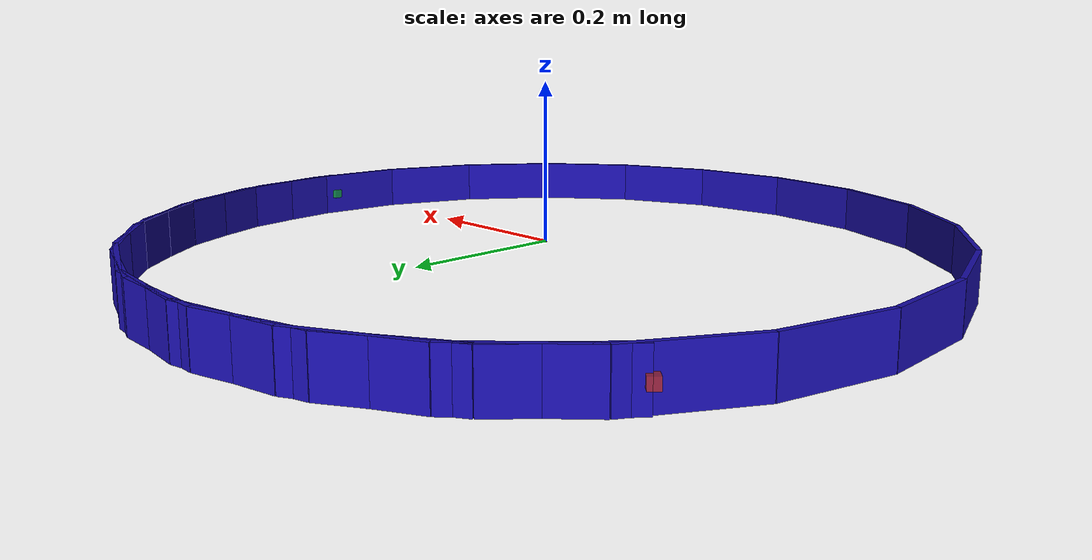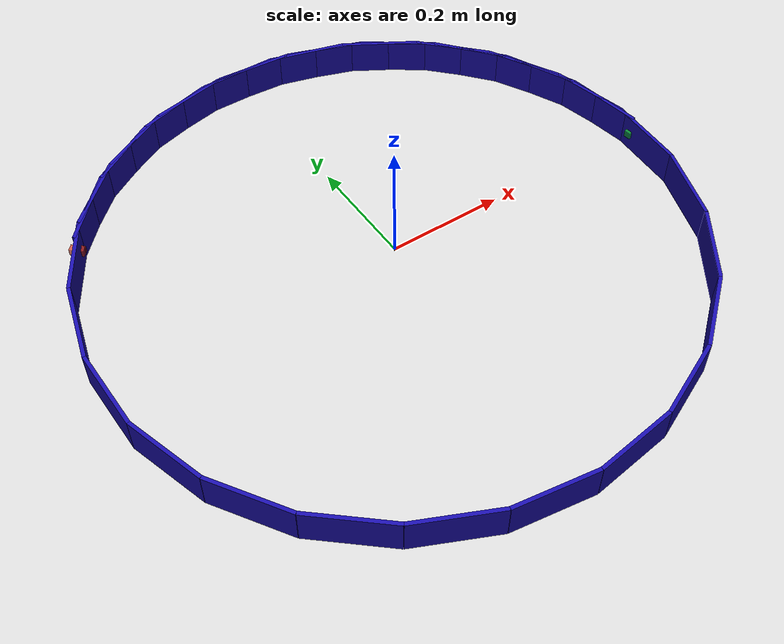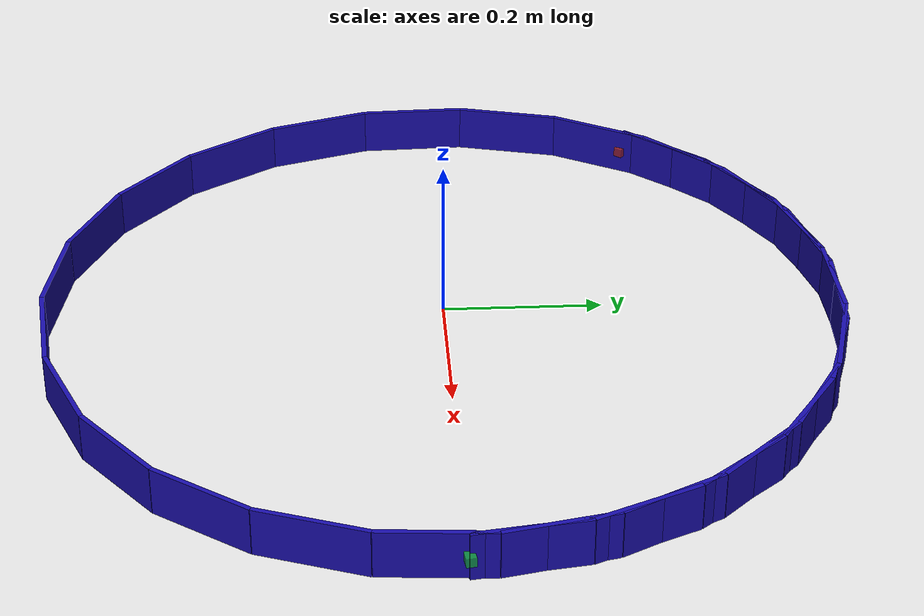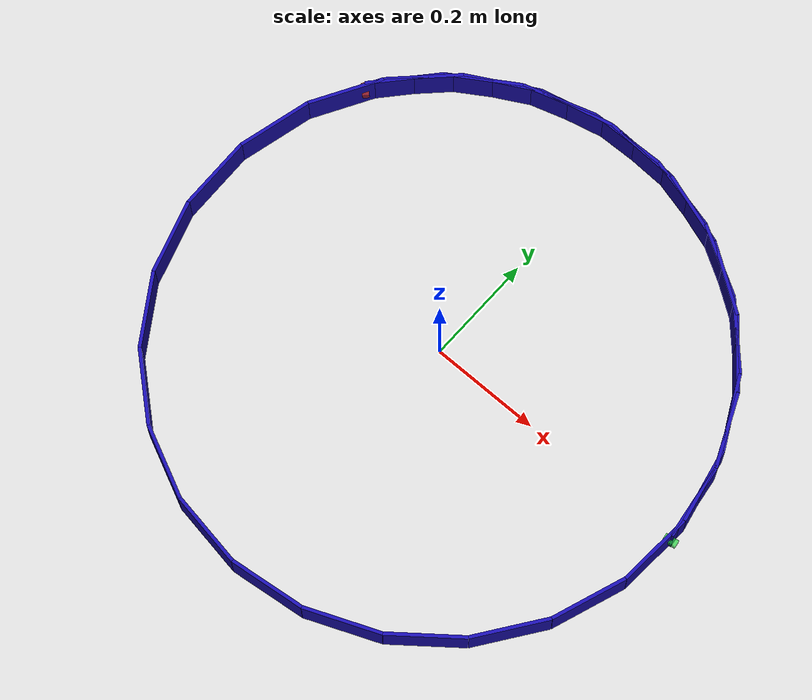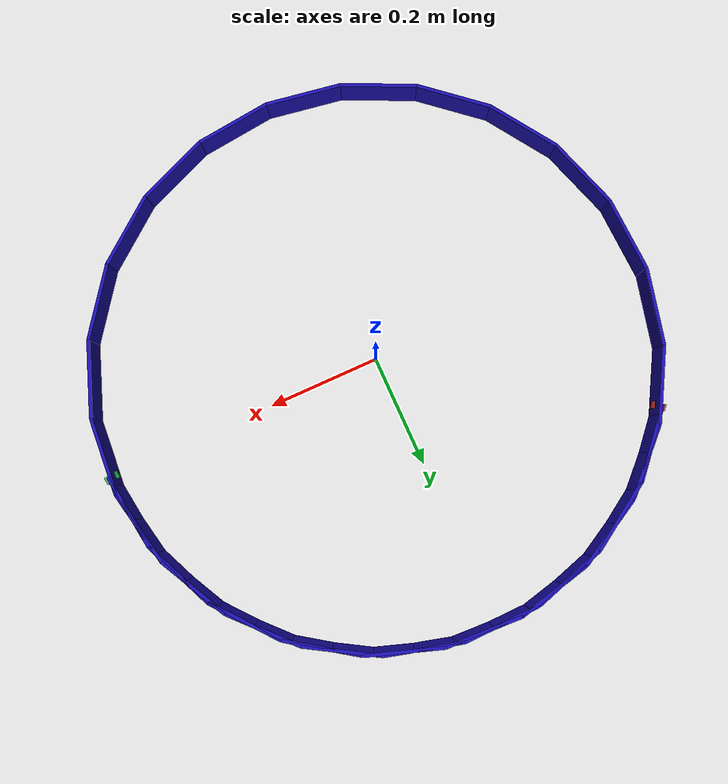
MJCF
<mujoco model="base">
  <compiler angle="radian"/>

  <option timestep="0.0005" tolerance="1e-10" integrator="RK4" cone="elliptic" jacobian="sparse" iterations="30"/>

  <size njmax="5000" nconmax="5000"/>

  <visual>
    <quality shadowsize="2048"/>
    <map stiffness="700" fogstart="10" fogend="15" znear="0.001" zfar="40" shadowscale="0.5"/>
    <rgba haze="0.15 0.25 0.35 1"/>
  </visual>

  <statistic meansize="0.05" extent="2"/>

  <extension>
    <plugin plugin="mujoco.elasticity.cable">
      <instance name="composite">
        <config key="twist" value="7859.503362562732"/>
        <config key="bend" value="1571900.6725125466"/>
        <config key="flat" value="false"/>
      </instance>
    </plugin>
  </extension>

  <asset>
    <texture type="skybox" builtin="gradient" rgb1="1 1 0.9" rgb2="0.9 0.9 0.81" width="512" height="3072"/>
    <texture type="2d" name="texplane" builtin="checker" mark="cross" rgb1="0.2 0.3 0.4" rgb2="0.1 0.15 0.2" markrgb="0.8 0.8 0.8" width="512" height="512"/>
    <material name="matplane" texture="texplane" texuniform="true" reflectance="0.3"/>
  </asset>

  <worldbody>
    <geom name="floor" size="3 3 0.125" pos="0 0 -10" type="plane" condim="1" material="matplane"/>
    <geom name="axis_x" size="0.002 0.015" pos="0.015 0 0" quat="0.707107 0 -0.707107 0" type="capsule" rgba="1 0 0 1"/>
    <geom name="axis_y" size="0.002 0.015" pos="0 0.015 0" quat="0.707107 0.707107 0 0" type="capsule" rgba="0 1 0 1"/>
    <geom name="axis_z" size="0.002 0.015" pos="0 0 0.015" quat="0 1 0 0" type="capsule" rgba="0 0 1 1"/>
    <body name="eef_body2" pos="0.5 0 0" quat="0.464327 0.464327 0.533292 0.533292">
      <geom name="eef_geom2" size="0.006 0.006 0.012" type="box" contype="0" conaffinity="0" mass="10" rgba="0.1 0.8 0.2 0.7"/>
      <site name="eef_body2_site" pos="0 0 0" size="0.01" group="2" rgba="0 0 0 0"/>
      <body name="eef_body2_sensor">
        <site name="sensor_site2" pos="0 0 0" size="0.01" group="2" rgba="0 0 0 0"/>
      </body>
    </body>
    <body name="eef_body" pos="-0.415404 0.27828 0" quat="0.289143 0.289143 -0.645288 -0.645288">
      <geom name="eef_geom" size="0.006 0.006 0.012" type="box" contype="0" conaffinity="0" mass="10" rgba="0.8 0.2 0.1 0.7"/>
      <site name="eef_body_site" pos="0 0 0" size="0.01" group="1" rgba="0 0 0 0"/>
      <body name="eef_body_sensor">
        <site name="sensor_site1" pos="0 0 0" size="0.01" group="1" rgba="0 0 0 0"/>
      </body>
    </body>
    <body name="stiffrope" pos="0.5 0 0">
      <joint name="freejoint_A" type="free" limited="false" actuatorfrclimited="false"/>
      <body name="B_0" quat="0.464327 0.464327 0.533292 0.533292">
        <geom name="G0" size="0.003 0.03 0.0688009" pos="0.0688009 0 0" quat="0.707107 0 -0.707107 0" type="box" conaffinity="0" condim="1" solref="0.001" mass="0.0037738" rgba="0.1 0.0533333 0.673333 1"/>
        <plugin instance="composite"/>
        <body name="B_1" pos="0.137602 0 0" quat="0.990488 0 0.137602 0">
          <joint name="J_1" pos="0 0 0" type="ball" group="3" actuatorfrclimited="false" damping="0.1"/>
          <geom name="G1" size="0.003 0.03 0.0688009" pos="0.0688009 0 0" quat="0.707107 0 -0.707107 0" type="box" conaffinity="0" condim="1" solref="0.001" mass="0.0037738" rgba="0.1 0.0533333 0.673333 1"/>
          <plugin instance="composite"/>
          <body name="B_2" pos="0.137602 0 0" quat="0.990488 0 0.137602 0">
            <joint name="J_2" pos="0 0 0" type="ball" group="3" actuatorfrclimited="false" damping="0.1"/>
            <geom name="G2" size="0.003 0.03 0.0688009" pos="0.0688009 0 0" quat="0.707107 0 -0.707107 0" type="box" conaffinity="0" condim="1" solref="0.001" mass="0.0037738" rgba="0.1 0.0533333 0.673333 1"/>
            <plugin instance="composite"/>
            <body name="B_3" pos="0.137602 0 0" quat="0.990488 0 0.137602 0">
              <joint name="J_3" pos="0 0 0" type="ball" group="3" actuatorfrclimited="false" damping="0.1"/>
              <geom name="G3" size="0.003 0.03 0.0688009" pos="0.0688009 0 0" quat="0.707107 0 -0.707107 0" type="box" conaffinity="0" condim="1" solref="0.001" mass="0.0037738" rgba="0.1 0.0533333 0.673333 1"/>
              <plugin instance="composite"/>
              <body name="B_4" pos="0.137602 0 0" quat="0.990488 0 0.137602 0">
                <joint name="J_4" pos="0 0 0" type="ball" group="3" actuatorfrclimited="false" damping="0.1"/>
                <geom name="G4" size="0.003 0.03 0.0688009" pos="0.0688009 0 0" quat="0.707107 0 -0.707107 0" type="box" conaffinity="0" condim="1" solref="0.001" mass="0.0037738" rgba="0.1 0.0533333 0.673333 1"/>
                <plugin instance="composite"/>
                <body name="B_5" pos="0.137602 0 0" quat="0.990488 0 0.137602 0">
                  <joint name="J_5" pos="0 0 0" type="ball" group="3" actuatorfrclimited="false" damping="0.1"/>
                  <geom name="G5" size="0.003 0.03 0.0688009" pos="0.0688009 0 0" quat="0.707107 0 -0.707107 0" type="box" conaffinity="0" condim="1" solref="0.001" mass="0.0037738" rgba="0.1 0.0533333 0.673333 1"/>
                  <plugin instance="composite"/>
                  <body name="B_6" pos="0.137602 0 0" quat="0.990488 0 0.137602 0">
                    <joint name="J_6" pos="0 0 0" type="ball" group="3" actuatorfrclimited="false" damping="0.1"/>
                    <geom name="G6" size="0.003 0.03 0.0688009" pos="0.0688009 0 0" quat="0.707107 0 -0.707107 0" type="box" conaffinity="0" condim="1" solref="0.001" mass="0.0037738" rgba="0.1 0.0533333 0.673333 1"/>
                    <plugin instance="composite"/>
                    <body name="B_7" pos="0.137602 0 0" quat="0.990488 0 0.137602 0">
                      <joint name="J_7" pos="0 0 0" type="ball" group="3" actuatorfrclimited="false" damping="0.1"/>
                      <geom name="G7" size="0.003 0.03 0.0688009" pos="0.0688009 0 0" quat="0.707107 0 -0.707107 0" type="box" conaffinity="0" condim="1" solref="0.001" mass="0.0037738" rgba="0.1 0.0533333 0.673333 1"/>
                      <plugin instance="composite"/>
                      <body name="B_8" pos="0.137602 0 0" quat="0.990488 0 0.137602 0">
                        <joint name="J_8" pos="0 0 0" type="ball" group="3" actuatorfrclimited="false" damping="0.1"/>
                        <geom name="G8" size="0.003 0.03 0.0688009" pos="0.0688009 0 0" quat="0.707107 0 -0.707107 0" type="box" conaffinity="0" condim="1" solref="0.001" mass="0.0037738" rgba="0.1 0.0533333 0.673333 1"/>
                        <plugin instance="composite"/>
                        <body name="B_9" pos="0.137602 0 0" quat="0.990488 0 0.137602 0">
                          <joint name="J_9" pos="0 0 0" type="ball" group="3" actuatorfrclimited="false" damping="0.1"/>
                          <geom name="G9" size="0.003 0.03 0.0688009" pos="0.0688009 0 0" quat="0.707107 0 -0.707107 0" type="box" conaffinity="0" condim="1" solref="0.001" mass="0.0037738" rgba="0.1 0.0533333 0.673333 1"/>
                          <plugin instance="composite"/>
                          <body name="B_10" pos="0.137602 0 0" quat="0.990488 0 0.137602 0">
                            <joint name="J_10" pos="0 0 0" type="ball" group="3" actuatorfrclimited="false" damping="0.1"/>
                            <geom name="G10" size="0.003 0.03 0.0688009" pos="0.0688009 0 0" quat="0.707107 0 -0.707107 0" type="box" conaffinity="0" condim="1" solref="0.001" mass="0.0037738" rgba="0.1 0.0533333 0.673333 1"/>
                            <plugin instance="composite"/>
                            <body name="B_11" pos="0.137602 0 0" quat="0.990488 0 0.137602 0">
                              <joint name="J_11" pos="0 0 0" type="ball" group="3" actuatorfrclimited="false" damping="0.1"/>
                              <geom name="G11" size="0.003 0.03 0.0688009" pos="0.0688009 0 0" quat="0.707107 0 -0.707107 0" type="box" conaffinity="0" condim="1" solref="0.001" mass="0.0037738" rgba="0.1 0.0533333 0.673333 1"/>
                              <plugin instance="composite"/>
                              <body name="B_12" pos="0.137602 0 0" quat="0.990488 0 0.137602 0">
                                <joint name="J_12" pos="0 0 0" type="ball" group="3" actuatorfrclimited="false" damping="0.1"/>
                                <geom name="G12" size="0.003 0.03 0.0688009" pos="0.0688009 0 0" quat="0.707107 0 -0.707107 0" type="box" conaffinity="0" condim="1" solref="0.001" mass="0.0037738" rgba="0.1 0.0533333 0.673333 1"/>
                                <plugin instance="composite"/>
                                <body name="B_13" pos="0.137602 0 0" quat="0.990488 0 0.137602 0">
                                  <joint name="J_13" pos="0 0 0" type="ball" group="3" actuatorfrclimited="false" damping="0.1"/>
                                  <geom name="G13" size="0.003 0.03 0.0688009" pos="0.0688009 0 0" quat="0.707107 0 -0.707107 0" type="box" conaffinity="0" condim="1" solref="0.001" mass="0.0037738" rgba="0.1 0.0533333 0.673333 1"/>
                                  <plugin instance="composite"/>
                                  <body name="B_14" pos="0.137602 0 0" quat="0.990488 0 0.137602 0">
                                    <joint name="J_14" pos="0 0 0" type="ball" group="3" actuatorfrclimited="false" damping="0.1"/>
                                    <geom name="G14" size="0.003 0.03 0.0688009" pos="0.0688009 0 0" quat="0.707107 0 -0.707107 0" type="box" conaffinity="0" condim="1" solref="0.001" mass="0.0037738" rgba="0.1 0.0533333 0.673333 1"/>
                                    <plugin instance="composite"/>
                                    <body name="B_15" pos="0.137602 0 0" quat="0.990488 0 0.137602 0">
                                      <joint name="J_15" pos="0 0 0" type="ball" group="3" actuatorfrclimited="false" damping="0.1"/>
                                      <geom name="G15" size="0.003 0.03 0.0688009" pos="0.0688009 0 0" quat="0.707107 0 -0.707107 0" type="box" conaffinity="0" condim="1" solref="0.001" mass="0.0037738" rgba="0.1 0.0533333 0.673333 1"/>
                                      <plugin instance="composite"/>
                                      <body name="B_16" pos="0.137602 0 0" quat="0.990488 0 0.137602 0">
                                        <joint name="J_16" pos="0 0 0" type="ball" group="3" actuatorfrclimited="false" damping="0.1"/>
                                        <geom name="G16" size="0.003 0.03 0.0688009" pos="0.0688009 0 0" quat="0.707107 0 -0.707107 0" type="box" conaffinity="0" condim="1" solref="0.001" mass="0.0037738" rgba="0.1 0.0533333 0.673333 1"/>
                                        <plugin instance="composite"/>
                                        <body name="B_17" pos="0.137602 0 0" quat="0.990488 0 0.137602 0">
                                          <joint name="J_17" pos="0 0 0" type="ball" group="3" actuatorfrclimited="false" damping="0.1"/>
                                          <geom name="G17" size="0.003 0.03 0.0688009" pos="0.0688009 0 0" quat="0.707107 0 -0.707107 0" type="box" conaffinity="0" condim="1" solref="0.001" mass="0.0037738" rgba="0.1 0.0533333 0.673333 1"/>
                                          <plugin instance="composite"/>
                                          <body name="B_18" pos="0.137602 0 0" quat="0.990488 0 0.137602 0">
                                            <joint name="J_18" pos="0 0 0" type="ball" group="3" actuatorfrclimited="false" damping="0.1"/>
                                            <geom name="G18" size="0.003 0.03 0.0688009" pos="0.0688009 0 0" quat="0.707107 0 -0.707107 0" type="box" conaffinity="0" condim="1" solref="0.001" mass="0.0037738" rgba="0.1 0.0533333 0.673333 1"/>
                                            <plugin instance="composite"/>
                                            <body name="B_19" pos="0.137602 0 0" quat="0.990488 0 0.137602 0">
                                              <joint name="J_19" pos="0 0 0" type="ball" group="3" actuatorfrclimited="false" damping="0.1"/>
                                              <geom name="G19" size="0.003 0.03 0.0688009" pos="0.0688009 0 0" quat="0.707107 0 -0.707107 0" type="box" conaffinity="0" condim="1" solref="0.001" mass="0.0037738" rgba="0.1 0.0533333 0.673333 1"/>
                                              <plugin instance="composite"/>
                                              <body name="B_20" pos="0.137602 0 0" quat="0.990488 0 0.137602 0">
                                                <joint name="J_20" pos="0 0 0" type="ball" group="3" actuatorfrclimited="false" damping="0.1"/>
                                                <geom name="G20" size="0.003 0.03 0.0688009" pos="0.0688009 0 0" quat="0.707107 0 -0.707107 0" type="box" conaffinity="0" condim="1" solref="0.001" mass="0.0037738" rgba="0.1 0.0533333 0.673333 1"/>
                                                <plugin instance="composite"/>
                                                <body name="B_21" pos="0.137602 0 0" quat="0.990488 0 0.137602 0">
                                                  <joint name="J_21" pos="0 0 0" type="ball" group="3" actuatorfrclimited="false" damping="0.1"/>
                                                  <geom name="G21" size="0.003 0.03 0.0688009" pos="0.0688009 0 0" quat="0.707107 0 -0.707107 0" type="box" conaffinity="0" condim="1" solref="0.001" mass="0.0037738" rgba="0.1 0.0533333 0.673333 1"/>
                                                  <plugin instance="composite"/>
                                                  <body name="B_22" pos="0.137602 0 0" quat="0.990488 0 0.137602 0">
                                                    <joint name="J_22" pos="0 0 0" type="ball" group="3" actuatorfrclimited="false" damping="0.1"/>
                                                    <geom name="G22" size="0.003 0.03 0.0688009" pos="0.0688009 0 0" quat="0.707107 0 -0.707107 0" type="box" conaffinity="0" condim="1" solref="0.001" mass="0.0037738" rgba="0.1 0.0533333 0.673333 1"/>
                                                    <plugin instance="composite"/>
                                                    <body name="B_23" pos="0.137602 0 0" quat="0.990488 0 0.137602 0">
                                                      <joint name="J_23" pos="0 0 0" type="ball" group="3" actuatorfrclimited="false" damping="0.1"/>
                                                      <geom name="G23" size="0.003 0.03 0.0688009" pos="0.0688009 0 0" quat="0.707107 0 -0.707107 0" type="box" conaffinity="0" condim="1" solref="0.001" mass="0.0037738" rgba="0.1 0.0533333 0.673333 1"/>
                                                      <plugin instance="composite"/>
                                                      <body name="B_24" pos="0.137602 0 0" quat="0.990488 0 0.137602 0">
                                                        <joint name="J_24" pos="0 0 0" type="ball" group="3" actuatorfrclimited="false" damping="0.1"/>
                                                        <geom name="G24" size="0.003 0.03 0.0688009" pos="0.0688009 0 0" quat="0.707107 0 -0.707107 0" type="box" conaffinity="0" condim="1" solref="0.001" mass="0.0037738" rgba="0.1 0.0533333 0.673333 1"/>
                                                        <plugin instance="composite"/>
                                                        <body name="B_25" pos="0.137602 0 0" quat="0.990488 0 0.137602 0">
                                                          <joint name="J_25" pos="0 0 0" type="ball" group="3" actuatorfrclimited="false" damping="0.1"/>
                                                          <geom name="G25" size="0.003 0.03 0.0688009" pos="0.0688009 0 0" quat="0.707107 0 -0.707107 0" type="box" conaffinity="0" condim="1" solref="0.001" mass="0.0037738" rgba="0.1 0.0533333 0.673333 1"/>
                                                          <plugin instance="composite"/>
                                                          <body name="B_26" pos="0.137602 0 0" quat="0.990488 0 0.137602 0">
                                                            <joint name="J_26" pos="0 0 0" type="ball" group="3" actuatorfrclimited="false" damping="0.1"/>
                                                            <geom name="G26" size="0.003 0.03 0.0688009" pos="0.0688009 0 0" quat="0.707107 0 -0.707107 0" type="box" conaffinity="0" condim="1" solref="0.001" mass="0.0037738" rgba="0.1 0.0533333 0.673333 1"/>
                                                            <plugin instance="composite"/>
                                                            <body name="B_27" pos="0.137602 0 0" quat="0.990488 0 0.137602 0">
                                                              <joint name="J_27" pos="0 0 0" type="ball" group="3" actuatorfrclimited="false" damping="0.1"/>
                                                              <geom name="G27" size="0.003 0.03 0.0688009" pos="0.0688009 0 0" quat="0.707107 0 -0.707107 0" type="box" conaffinity="0" condim="1" solref="0.001" mass="0.0037738" rgba="0.1 0.0533333 0.673333 1"/>
                                                              <plugin instance="composite"/>
                                                              <body name="B_28" pos="0.137602 0 0" quat="0.990488 0 0.137602 0">
                                                                <joint name="J_28" pos="0 0 0" type="ball" group="3" actuatorfrclimited="false" damping="0.1"/>
                                                                <geom name="G28" size="0.003 0.03 0.0688009" pos="0.0688009 0 0" quat="0.707107 0 -0.707107 0" type="box" conaffinity="0" condim="1" solref="0.001" mass="0.0037738" rgba="0.1 0.0533333 0.673333 1"/>
                                                                <plugin instance="composite"/>
                                                                <body name="B_29" pos="0.137602 0 0" quat="0.990488 0 0.137602 0">
                                                                  <joint name="J_29" pos="0 0 0" type="ball" group="3" actuatorfrclimited="false" damping="0.1"/>
                                                                  <geom name="G29" size="0.003 0.03 0.0688009" pos="0.0688009 0 0" quat="0.707107 0 -0.707107 0" type="box" conaffinity="0" condim="1" solref="0.001" mass="0.0037738" rgba="0.1 0.0533333 0.673333 1"/>
                                                                  <plugin instance="composite"/>
                                                                  <body name="B_30" pos="0.137602 0 0" quat="0.990488 0 0.137602 0">
                                                                    <joint name="J_30" pos="0 0 0" type="ball" group="3" actuatorfrclimited="false" damping="0.1"/>
                                                                    <geom name="G30" size="0.003 0.03 0.0688009" pos="0.0688009 0 0" quat="0.707107 0 -0.707107 0" type="box" conaffinity="0" condim="1" solref="0.001" mass="0.0037738" rgba="0.1 0.0533333 0.673333 1"/>
                                                                    <plugin instance="composite"/>
                                                                    <body name="B_last" pos="0.137602 0 0" quat="0.990488 0 0.137602 0">
                                                                      <joint name="J_last" pos="0 0 0" type="ball" group="3" actuatorfrclimited="false" damping="0.1"/>
                                                                      <geom name="G31" size="0.003 0.03 0.0688009" pos="0.0688009 0 0" quat="0.707107 0 -0.707107 0" type="box" conaffinity="0" condim="1" solref="0.001" mass="0.0037738" rgba="0.1 0.0533333 0.673333 1"/>
                                                                      <plugin instance="composite"/>
                                                                      <body name="B_last2" pos="0.137602 0 0">
                                                                        <plugin instance="composite"/>
                                                                      </body>
                                                                    </body>
                                                                  </body>
                                                                </body>
                                                              </body>
                                                            </body>
                                                          </body>
                                                        </body>
                                                      </body>
                                                    </body>
                                                  </body>
                                                </body>
                                              </body>
                                            </body>
                                          </body>
                                        </body>
                                      </body>
                                    </body>
                                  </body>
                                </body>
                              </body>
                            </body>
                          </body>
                        </body>
                      </body>
                    </body>
                  </body>
                </body>
              </body>
            </body>
          </body>
        </body>
      </body>
    </body>
  </worldbody>

  <equality>
    <weld name="weld_end" body1="B_last" body2="eef_body_sensor" anchor="0 0 0" relpose="0.137602 0 0 1 0 0 0" torquescale="1" solref="0.001"/>
    <weld name="weld_start" body1="B_0" body2="eef_body2_sensor" anchor="0 0 0" relpose="0 0 0 1 0 0 0" torquescale="1" solref="0.001"/>
  </equality>

  <sensor>
    <torque site="sensor_site1" name="torque_A"/>
    <force site="sensor_site1" name="force_A"/>
    <torque site="sensor_site2" name="torque_B"/>
    <force site="sensor_site2" name="force_B"/>
  </sensor>
</mujoco>
